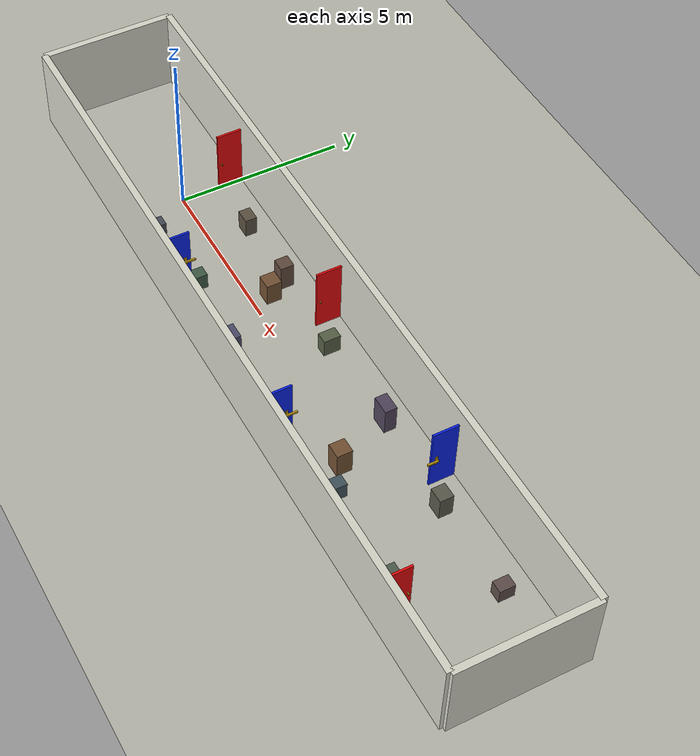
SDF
<?xml version="1.0" ?>
<sdf version="1.6">
  <world name="fire_corridor">

    <physics name="default_physics" type="ode">
      <max_step_size>0.001</max_step_size>
      <real_time_update_rate>1000</real_time_update_rate>
    </physics>

    <plugin name="gz::sim::systems::Physics" filename="gz-sim-physics-system"/>
    <plugin name="gz::sim::systems::UserCommands" filename="gz-sim-user-commands-system"/>
    <plugin name="gz::sim::systems::SceneBroadcaster" filename="gz-sim-scene-broadcaster-system"/>
    <plugin name="gz::sim::systems::Sensors" filename="gz-sim-sensors-system">
      <render_engine>ogre</render_engine>
    </plugin>

    <light type="directional" name="sun">
      <cast_shadows>true</cast_shadows>
      <pose>6 0 10 0 0 0</pose>
      <diffuse>0.9 0.9 0.9 1</diffuse>
      <specular>0.3 0.3 0.3 1</specular>
      <direction>-0.5 0.1 -1</direction>
    </light>
    <light type="point" name="light_mid">
      <pose>8 0 2.8 0 0 0</pose>
      <diffuse>0.8 0.8 0.8 1</diffuse>
      <specular>0.1 0.1 0.1 1</specular>
      <attenuation><range>16</range><linear>0.05</linear></attenuation>
    </light>

    <model name="ground_plane">
      <static>true</static>
      <link name="link">
        <collision name="col">
          <geometry><plane><normal>0 0 1</normal><size>30 10</size></plane></geometry>
        </collision>
        <visual name="vis">
          <geometry><plane><normal>0 0 1</normal><size>30 10</size></plane></geometry>
          <material><ambient>0.72 0.72 0.68 1</ambient><diffuse>0.72 0.72 0.68 1</diffuse></material>
        </visual>
      </link>
    </model>

    <model name="wall_south">
      <static>true</static>
      <pose>6.5 -2 1.25 0 0 0</pose>
      <link name="link">
        <collision name="col"><geometry><box><size>23 0.2 2.5</size></box></geometry></collision>
        <visual name="vis">
          <geometry><box><size>23 0.2 2.5</size></box></geometry>
          <material><ambient>0.85 0.85 0.80 1</ambient><diffuse>0.85 0.85 0.80 1</diffuse></material>
        </visual>
      </link>
    </model>

    <model name="wall_north">
      <static>true</static>
      <pose>6.5 2 1.25 0 0 0</pose>
      <link name="link">
        <collision name="col"><geometry><box><size>23 0.2 2.5</size></box></geometry></collision>
        <visual name="vis">
          <geometry><box><size>23 0.2 2.5</size></box></geometry>
          <material><ambient>0.85 0.85 0.80 1</ambient><diffuse>0.85 0.85 0.80 1</diffuse></material>
        </visual>
      </link>
    </model>

    <model name="wall_west">
      <static>true</static>
      <pose>-5 0 1.25 0 0 0</pose>
      <link name="link">
        <collision name="col"><geometry><box><size>0.2 4 2.5</size></box></geometry></collision>
        <visual name="vis">
          <geometry><box><size>0.2 4 2.5</size></box></geometry>
          <material><ambient>0.85 0.85 0.80 1</ambient><diffuse>0.85 0.85 0.80 1</diffuse></material>
        </visual>
      </link>
    </model>

    <model name="wall_east">
      <static>true</static>
      <pose>18 0 1.25 0 0 0</pose>
      <link name="link">
        <collision name="col"><geometry><box><size>0.2 4 2.5</size></box></geometry></collision>
        <visual name="vis">
          <geometry><box><size>0.2 4 2.5</size></box></geometry>
          <material><ambient>0.85 0.85 0.80 1</ambient><diffuse>0.85 0.85 0.80 1</diffuse></material>
        </visual>
      </link>
    </model>

    <!-- Side doors: visual only, no collision. -->
    <model name="door_red1">
      <static>true</static>
      <pose>0 1.55 1.0 0 0 0</pose>
      <link name="link">
        <visual name="panel">
          <geometry><box><size>0.06 0.8 2.0</size></box></geometry>
          <material><ambient>0.92 0.04 0.04 1</ambient><diffuse>0.92 0.04 0.04 1</diffuse></material>
        </visual>
      </link>
    </model>
    <model name="handle_red1">
      <static>true</static>
      <pose>0.04 1.25 0.95 0 1.5708 0</pose>
      <link name="link">
        <visual name="handle"><geometry><cylinder><radius>0.018</radius><length>0.13</length></cylinder></geometry><material><ambient>0.75 0.60 0.05 1</ambient></material></visual>
      </link>
    </model>

    <model name="door_blue1">
      <static>false</static>
      <pose>3 -1.55 1 0 0 0</pose>
      <link name="panel">
        <inertial>
          <mass>2.0</mass>
          <inertia>
            <ixx>0.90</ixx><ixy>0</ixy><ixz>0</ixz>
            <iyy>0.90</iyy><iyz>0</iyz><izz>0.12</izz>
          </inertia>
        </inertial>
        <collision name="panel_collision">
          <geometry><box><size>0.06 0.8 2</size></box></geometry>
          <surface>
            <friction><ode><mu>0.8</mu><mu2>0.8</mu2></ode></friction>
          </surface>
        </collision>
        <visual name="panel">
          <geometry><box><size>0.06 0.8 2</size></box></geometry>
          <material><ambient>0.04 0.14 0.92 1</ambient><diffuse>0.04 0.14 0.92 1</diffuse></material>
        </visual>
        <collision name="handle_collision">
<pose>0.074 0.36 -0.05 0 0 0</pose>
<geometry><box><size>0.07 0.32 0.055</size></box></geometry>
        </collision>
        <visual name="handle_backplate">
<pose>0.032 0.24 -0.05 0 0 0</pose>
<geometry><box><size>0.022 0.08 0.28</size></box></geometry>
<material><ambient>0.75 0.60 0.05 1</ambient><diffuse>0.75 0.60 0.05 1</diffuse></material>
        </visual>
        <visual name="handle">
<pose>0.078 0.36 -0.05 0 0 0</pose>
<geometry><box><size>0.052 0.32 0.052</size></box></geometry>
<material><ambient>0.75 0.60 0.05 1</ambient><diffuse>0.75 0.60 0.05 1</diffuse></material>
        </visual>
      </link>
      <joint name="hinge" type="revolute">
        <pose>0 -0.4 0 0 0 0</pose>
        <parent>world</parent>
        <child>panel</child>
        <axis>
          <xyz>0 0 1</xyz>
          <limit><lower>-2.10</lower><upper>2.10</upper><effort>40</effort><velocity>1.5</velocity></limit>
          <dynamics><damping>1.0</damping><friction>0.05</friction></dynamics>
        </axis>
      </joint>
      <plugin filename="ignition-gazebo-joint-position-controller-system"
              name="gz::sim::systems::JointPositionController">
        <joint_name>hinge</joint_name>
        <topic>/fire_robot/door/blue/x300/yn155/sn/cmd</topic>
        <p_gain>8.0</p_gain>
        <d_gain>0.4</d_gain>
        <cmd_max>60</cmd_max>
        <cmd_min>-60</cmd_min>
      </plugin>
    </model>

    <model name="door_red2">
      <static>true</static>
      <pose>6 1.55 1.0 0 0 0</pose>
      <link name="link">
        <visual name="panel">
          <geometry><box><size>0.06 0.8 2.0</size></box></geometry>
          <material><ambient>0.92 0.04 0.04 1</ambient><diffuse>0.92 0.04 0.04 1</diffuse></material>
        </visual>
      </link>
    </model>
    <model name="handle_red2">
      <static>true</static>
      <pose>6.04 1.25 0.95 0 1.5708 0</pose>
      <link name="link">
        <visual name="handle"><geometry><cylinder><radius>0.018</radius><length>0.13</length></cylinder></geometry><material><ambient>0.75 0.60 0.05 1</ambient></material></visual>
      </link>
    </model>

    <model name="door_blue2">
      <static>false</static>
      <pose>9 -1.55 1 0 0 0</pose>
      <link name="panel">
        <inertial>
          <mass>2.0</mass>
          <inertia>
            <ixx>0.90</ixx><ixy>0</ixy><ixz>0</ixz>
            <iyy>0.90</iyy><iyz>0</iyz><izz>0.12</izz>
          </inertia>
        </inertial>
        <collision name="panel_collision">
          <geometry><box><size>0.06 0.8 2</size></box></geometry>
          <surface>
            <friction><ode><mu>0.8</mu><mu2>0.8</mu2></ode></friction>
          </surface>
        </collision>
        <visual name="panel">
          <geometry><box><size>0.06 0.8 2</size></box></geometry>
          <material><ambient>0.04 0.14 0.92 1</ambient><diffuse>0.04 0.14 0.92 1</diffuse></material>
        </visual>
        <collision name="handle_collision">
<pose>0.074 0.36 -0.05 0 0 0</pose>
<geometry><box><size>0.07 0.32 0.055</size></box></geometry>
        </collision>
        <visual name="handle_backplate">
<pose>0.032 0.24 -0.05 0 0 0</pose>
<geometry><box><size>0.022 0.08 0.28</size></box></geometry>
<material><ambient>0.75 0.60 0.05 1</ambient><diffuse>0.75 0.60 0.05 1</diffuse></material>
        </visual>
        <visual name="handle">
<pose>0.078 0.36 -0.05 0 0 0</pose>
<geometry><box><size>0.052 0.32 0.052</size></box></geometry>
<material><ambient>0.75 0.60 0.05 1</ambient><diffuse>0.75 0.60 0.05 1</diffuse></material>
        </visual>
      </link>
      <joint name="hinge" type="revolute">
        <pose>0 -0.4 0 0 0 0</pose>
        <parent>world</parent>
        <child>panel</child>
        <axis>
          <xyz>0 0 1</xyz>
          <limit><lower>-2.10</lower><upper>2.10</upper><effort>40</effort><velocity>1.5</velocity></limit>
          <dynamics><damping>1.0</damping><friction>0.05</friction></dynamics>
        </axis>
      </joint>
      <plugin filename="ignition-gazebo-joint-position-controller-system"
              name="gz::sim::systems::JointPositionController">
        <joint_name>hinge</joint_name>
        <topic>/fire_robot/door/blue/x900/yn155/sn/cmd</topic>
        <p_gain>8.0</p_gain>
        <d_gain>0.4</d_gain>
        <cmd_max>60</cmd_max>
        <cmd_min>-60</cmd_min>
      </plugin>
    </model>

    <model name="door_blue3">
      <static>false</static>
      <pose>12 1.55 1 0 0 0</pose>
      <link name="panel">
        <inertial>
          <mass>2.0</mass>
          <inertia>
            <ixx>0.90</ixx><ixy>0</ixy><ixz>0</ixz>
            <iyy>0.90</iyy><iyz>0</iyz><izz>0.12</izz>
          </inertia>
        </inertial>
        <collision name="panel_collision">
          <geometry><box><size>0.06 0.8 2</size></box></geometry>
          <surface>
            <friction><ode><mu>0.8</mu><mu2>0.8</mu2></ode></friction>
          </surface>
        </collision>
        <visual name="panel">
          <geometry><box><size>0.06 0.8 2</size></box></geometry>
          <material><ambient>0.04 0.14 0.92 1</ambient><diffuse>0.04 0.14 0.92 1</diffuse></material>
        </visual>
        <collision name="handle_collision">
<pose>0.074 -0.36 -0.05 0 0 0</pose>
<geometry><box><size>0.07 0.32 0.055</size></box></geometry>
        </collision>
        <visual name="handle_backplate">
<pose>0.032 -0.24 -0.05 0 0 0</pose>
<geometry><box><size>0.022 0.08 0.28</size></box></geometry>
<material><ambient>0.75 0.60 0.05 1</ambient><diffuse>0.75 0.60 0.05 1</diffuse></material>
        </visual>
        <visual name="handle">
<pose>0.078 -0.36 -0.05 0 0 0</pose>
<geometry><box><size>0.052 0.32 0.052</size></box></geometry>
<material><ambient>0.75 0.60 0.05 1</ambient><diffuse>0.75 0.60 0.05 1</diffuse></material>
        </visual>
      </link>
      <joint name="hinge" type="revolute">
        <pose>0 0.4 0 0 0 0</pose>
        <parent>world</parent>
        <child>panel</child>
        <axis>
          <xyz>0 0 1</xyz>
          <limit><lower>-2.10</lower><upper>2.10</upper><effort>40</effort><velocity>1.5</velocity></limit>
          <dynamics><damping>1.0</damping><friction>0.05</friction></dynamics>
        </axis>
      </joint>
      <plugin filename="ignition-gazebo-joint-position-controller-system"
              name="gz::sim::systems::JointPositionController">
        <joint_name>hinge</joint_name>
        <topic>/fire_robot/door/blue/x1200/yp155/sp/cmd</topic>
        <p_gain>8.0</p_gain>
        <d_gain>0.4</d_gain>
        <cmd_max>60</cmd_max>
        <cmd_min>-60</cmd_min>
      </plugin>
    </model>

    <model name="door_red3">
      <static>true</static>
      <pose>15 -1.55 1.0 0 0 0</pose>
      <link name="link">
        <visual name="panel">
          <geometry><box><size>0.06 0.8 2.0</size></box></geometry>
          <material><ambient>0.92 0.04 0.04 1</ambient><diffuse>0.92 0.04 0.04 1</diffuse></material>
        </visual>
      </link>
    </model>
    <model name="handle_red3">
      <static>true</static>
      <pose>15.04 -1.25 0.95 0 1.5708 0</pose>
      <link name="link">
        <visual name="handle"><geometry><cylinder><radius>0.018</radius><length>0.13</length></cylinder></geometry><material><ambient>0.75 0.60 0.05 1</ambient></material></visual>
      </link>
    </model>

    <!-- Front emergency exit. -->
    <model name="door_exit">
      <static>true</static>
      <pose>17.92 0 1.0 0 0 0</pose>
      <link name="link">
        <visual name="panel">
          <geometry><box><size>0.06 0.9 2.0</size></box></geometry>
          <material><ambient>0.0 0.88 0.05 1</ambient><diffuse>0.0 0.88 0.05 1</diffuse></material>
        </visual>
      </link>
    </model>
    <model name="handle_exit">
      <static>true</static>
      <pose>17.88 -0.30 0.95 0 1.5708 0</pose>
      <link name="link">
        <visual name="handle"><geometry><cylinder><radius>0.018</radius><length>0.13</length></cylinder></geometry><material><ambient>0.75 0.60 0.05 1</ambient></material></visual>
      </link>
    </model>

    <model name="obstacle1">
      <static>true</static>
      <pose>4.5 0.55 0.35 0 0 0</pose>
      <link name="link">
        <collision name="col"><geometry><box><size>0.45 0.45 0.70</size></box></geometry></collision>
        <visual name="vis">
          <geometry><box><size>0.45 0.45 0.70</size></box></geometry>
          <material><ambient>0.45 0.32 0.20 1</ambient><diffuse>0.45 0.32 0.20 1</diffuse></material>
        </visual>
      </link>
    </model>

    <model name="obstacle2">
      <static>true</static>
      <pose>10.5 -0.55 0.40 0 0 0</pose>
      <link name="link">
        <collision name="col"><geometry><box><size>0.45 0.45 0.80</size></box></geometry></collision>
        <visual name="vis">
          <geometry><box><size>0.45 0.45 0.80</size></box></geometry>
          <material><ambient>0.45 0.32 0.20 1</ambient><diffuse>0.45 0.32 0.20 1</diffuse></material>
        </visual>
      </link>
    </model>

    <!-- Obstacle stress v2: many varied boxes, with the center aisle kept navigable. -->

    <model name="v2_obstacle_01_low_left">
      <static>true</static>
      <pose>0.80 -1.15 0.20 0 0 0</pose>
      <link name="link">
        <collision name="col"><geometry><box><size>0.35 0.35 0.40</size></box></geometry></collision>
        <visual name="vis">
          <geometry><box><size>0.35 0.35 0.40</size></box></geometry>
          <material><ambient>0.28 0.30 0.34 1</ambient><diffuse>0.28 0.30 0.34 1</diffuse></material>
        </visual>
      </link>
    </model>

    <model name="v2_obstacle_02_mid_right">
      <static>true</static>
      <pose>1.90 1.15 0.30 0 0 0</pose>
      <link name="link">
        <collision name="col"><geometry><box><size>0.45 0.35 0.60</size></box></geometry></collision>
        <visual name="vis">
          <geometry><box><size>0.45 0.35 0.60</size></box></geometry>
          <material><ambient>0.36 0.32 0.26 1</ambient><diffuse>0.36 0.32 0.26 1</diffuse></material>
        </visual>
      </link>
    </model>

    <model name="v2_obstacle_03_wide_left">
      <static>true</static>
      <pose>3.20 -1.08 0.25 0 0 0</pose>
      <link name="link">
        <collision name="col"><geometry><box><size>0.35 0.50 0.50</size></box></geometry></collision>
        <visual name="vis">
          <geometry><box><size>0.35 0.50 0.50</size></box></geometry>
          <material><ambient>0.25 0.36 0.28 1</ambient><diffuse>0.25 0.36 0.28 1</diffuse></material>
        </visual>
      </link>
    </model>

    <model name="v2_obstacle_04_tall_right">
      <static>true</static>
      <pose>4.20 1.12 0.40 0 0 0</pose>
      <link name="link">
        <collision name="col"><geometry><box><size>0.40 0.40 0.80</size></box></geometry></collision>
        <visual name="vis">
          <geometry><box><size>0.40 0.40 0.80</size></box></geometry>
          <material><ambient>0.38 0.29 0.24 1</ambient><diffuse>0.38 0.29 0.24 1</diffuse></material>
        </visual>
      </link>
    </model>

    <model name="v2_obstacle_05_mid_left">
      <static>true</static>
      <pose>5.60 -1.20 0.28 0 0 0</pose>
      <link name="link">
        <collision name="col"><geometry><box><size>0.50 0.35 0.56</size></box></geometry></collision>
        <visual name="vis">
          <geometry><box><size>0.50 0.35 0.56</size></box></geometry>
          <material><ambient>0.30 0.30 0.42 1</ambient><diffuse>0.30 0.30 0.42 1</diffuse></material>
        </visual>
      </link>
    </model>

    <model name="v2_obstacle_06_wide_right">
      <static>true</static>
      <pose>6.90 1.08 0.28 0 0 0</pose>
      <link name="link">
        <collision name="col"><geometry><box><size>0.35 0.50 0.56</size></box></geometry></collision>
        <visual name="vis">
          <geometry><box><size>0.35 0.50 0.56</size></box></geometry>
          <material><ambient>0.34 0.38 0.28 1</ambient><diffuse>0.34 0.38 0.28 1</diffuse></material>
        </visual>
      </link>
    </model>

    <model name="v2_obstacle_07_low_left">
      <static>true</static>
      <pose>8.10 -1.12 0.20 0 0 0</pose>
      <link name="link">
        <collision name="col"><geometry><box><size>0.40 0.40 0.40</size></box></geometry></collision>
        <visual name="vis">
          <geometry><box><size>0.40 0.40 0.40</size></box></geometry>
          <material><ambient>0.40 0.34 0.25 1</ambient><diffuse>0.40 0.34 0.25 1</diffuse></material>
        </visual>
      </link>
    </model>

    <model name="v2_obstacle_08_tall_right">
      <static>true</static>
      <pose>9.80 1.15 0.42 0 0 0</pose>
      <link name="link">
        <collision name="col"><geometry><box><size>0.55 0.35 0.84</size></box></geometry></collision>
        <visual name="vis">
          <geometry><box><size>0.55 0.35 0.84</size></box></geometry>
          <material><ambient>0.32 0.27 0.36 1</ambient><diffuse>0.32 0.27 0.36 1</diffuse></material>
        </visual>
      </link>
    </model>

    <model name="v2_obstacle_09_wide_left">
      <static>true</static>
      <pose>11.20 -1.08 0.25 0 0 0</pose>
      <link name="link">
        <collision name="col"><geometry><box><size>0.35 0.50 0.50</size></box></geometry></collision>
        <visual name="vis">
          <geometry><box><size>0.35 0.50 0.50</size></box></geometry>
          <material><ambient>0.26 0.33 0.36 1</ambient><diffuse>0.26 0.33 0.36 1</diffuse></material>
        </visual>
      </link>
    </model>

    <model name="v2_obstacle_10_mid_right">
      <static>true</static>
      <pose>12.80 1.05 0.35 0 0 0</pose>
      <link name="link">
        <collision name="col"><geometry><box><size>0.45 0.40 0.70</size></box></geometry></collision>
        <visual name="vis">
          <geometry><box><size>0.45 0.40 0.70</size></box></geometry>
          <material><ambient>0.35 0.35 0.30 1</ambient><diffuse>0.35 0.35 0.30 1</diffuse></material>
        </visual>
      </link>
    </model>

    <model name="v2_obstacle_11_mid_left">
      <static>true</static>
      <pose>14.20 -1.15 0.30 0 0 0</pose>
      <link name="link">
        <collision name="col"><geometry><box><size>0.50 0.35 0.60</size></box></geometry></collision>
        <visual name="vis">
          <geometry><box><size>0.50 0.35 0.60</size></box></geometry>
          <material><ambient>0.31 0.36 0.31 1</ambient><diffuse>0.31 0.36 0.31 1</diffuse></material>
        </visual>
      </link>
    </model>

    <model name="v2_obstacle_12_low_right">
      <static>true</static>
      <pose>15.60 1.10 0.22 0 0 0</pose>
      <link name="link">
        <collision name="col"><geometry><box><size>0.35 0.45 0.44</size></box></geometry></collision>
        <visual name="vis">
          <geometry><box><size>0.35 0.45 0.44</size></box></geometry>
          <material><ambient>0.37 0.31 0.29 1</ambient><diffuse>0.37 0.31 0.29 1</diffuse></material>
        </visual>
      </link>
    </model>
  </world>
</sdf>
